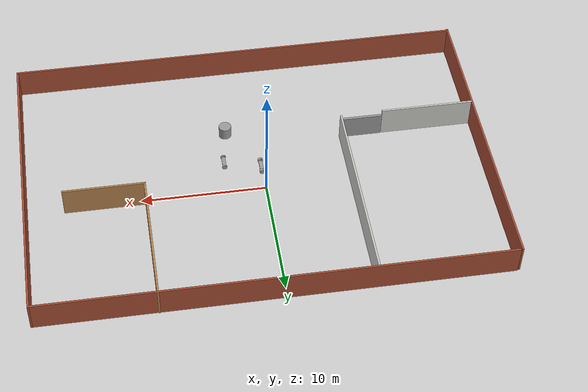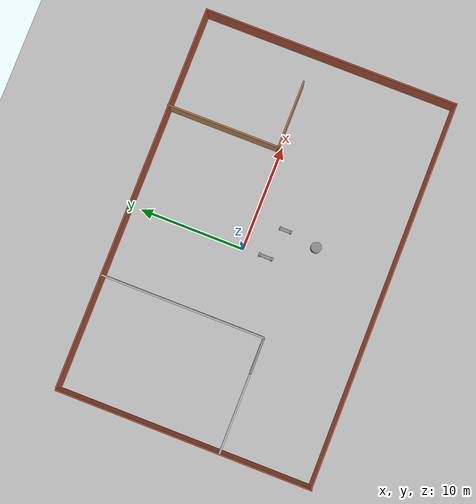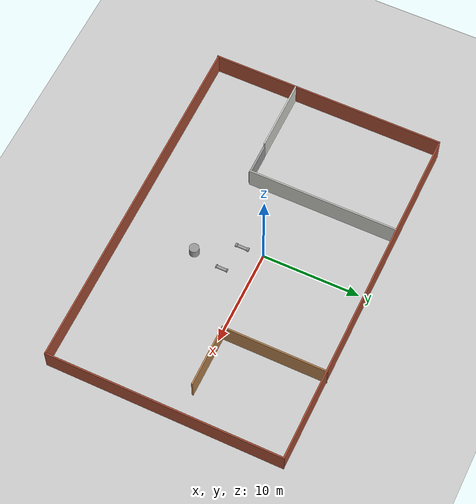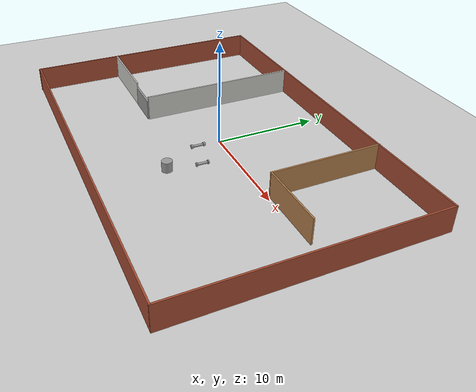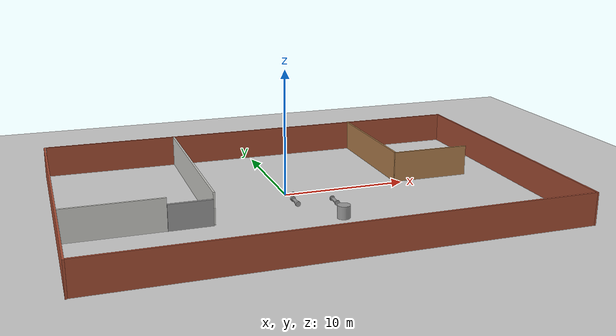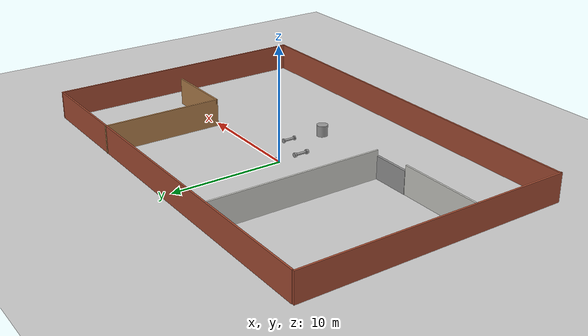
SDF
<sdf version="1.6">
 <world name="default">
  <light name="sun" type="directional">
   <pose>0 0 10 0 -0 0</pose>
   <diffuse>0.8 0.8 0.8 1</diffuse>
   <specular>0.2 0.2 0.2 1</specular>
   <attenuation>
    <range>1000</range>
    <constant>0.9</constant>
    <linear>0.01</linear>
    <quadratic>0.001</quadratic>
   </attenuation>
   <direction>-0.5 0.1 -0.9</direction>
   <spot><inner_angle>0</inner_angle><outer_angle>0</outer_angle><falloff>0</falloff></spot>
  </light>
  <model name="ground_plane">
   <static>1</static>
   <link name="link">
    <collision name="collision">
     <geometry><plane><normal>0 0 1</normal><size>100 100</size></plane></geometry>
     <surface>
      <contact><collide_bitmask>65535</collide_bitmask></contact>
      <friction><ode><mu>100</mu><mu2>50</mu2></ode></friction>
     </surface>
    </collision>
    <visual name="visual">
     <cast_shadows>0</cast_shadows>
     <geometry><plane><normal>0 0 1</normal><size>100 100</size></plane></geometry>
     <material>
      <script><uri>file://media/materials/scripts/gazebo.material</uri><name>Gazebo/Grey</name></script>
     </material>
    </visual>
   </link>
  </model>
  <gravity>0 0 -9.8</gravity>
  <magnetic_field>6e-06 2.3e-05 -4.2e-05</magnetic_field>
  <atmosphere type="adiabatic"/>
  <physics name="default_physics" default="0" type="ode">
   <max_step_size>0.001</max_step_size>
   <real_time_factor>1</real_time_factor>
   <real_time_update_rate>1000</real_time_update_rate>
  </physics>
  <scene><ambient>0.4 0.4 0.4 1</ambient><background>0.7 0.7 0.7 1</background><shadows>1</shadows></scene>
  <spherical_coordinates>
   <surface_model>EARTH_WGS84</surface_model>
   <latitude_deg>0</latitude_deg>
   <longitude_deg>0</longitude_deg>
   <elevation>0</elevation>
   <heading_deg>0</heading_deg>
  </spherical_coordinates>
  <model name="twowheelsrobotModel">
   <link name="link_0">
    <pose>0 0 0.2 0 -0 0</pose>
    <inertial>
     <mass>1</mass>
     <inertia>
      <ixx>0.166667</ixx>
      <ixy>0</ixy>
      <ixz>0</ixz>
      <iyy>0.166667</iyy>
      <iyz>0</iyz>
      <izz>0.166667</izz>
     </inertia>
    </inertial>
    <visual name="visual">
     <geometry><box><size>0.3 1 0.1</size></box></geometry>
     <material>
      <lighting>1</lighting>
      <script><uri>file://media/materials/scripts/gazebo.material</uri><name>Gazebo/Grey</name></script>
      <shader type="pixel"><normal_map>__default__</normal_map></shader>
      <ambient>0.3 0.3 0.3 1</ambient>
      <diffuse>0.7 0.7 0.7 1</diffuse>
      <specular>0.01 0.01 0.01 1</specular>
      <emissive>0 0 0 1</emissive>
     </material>
    </visual>
    <collision name="collision">
     <geometry><box><size>0.3 1 0.1</size></box></geometry>
     <surface>
      <friction>
       <ode><mu>1</mu><mu2>1</mu2><fdir1>0 0 0</fdir1><slip1>0</slip1><slip2>0</slip2></ode>
       <torsional>
        <coefficient>1</coefficient>
        <patch_radius>0</patch_radius>
        <surface_radius>0</surface_radius>
        <use_patch_radius>1</use_patch_radius>
        <ode><slip>0</slip></ode>
       </torsional>
      </friction>
      <bounce><restitution_coefficient>0</restitution_coefficient><threshold>1e+06</threshold></bounce>
      <contact>
       <collide_without_contact>0</collide_without_contact>
       <collide_without_contact_bitmask>1</collide_without_contact_bitmask>
       <collide_bitmask>1</collide_bitmask>
       <ode>
        <soft_cfm>0</soft_cfm>
        <soft_erp>0.2</soft_erp>
        <kp>1e+13</kp>
        <kd>1</kd>
        <max_vel>0.01</max_vel>
        <min_depth>0</min_depth>
       </ode>
       <bullet>
        <split_impulse>1</split_impulse>
        <split_impulse_penetration_threshold>-0.01</split_impulse_penetration_threshold>
        <soft_cfm>0</soft_cfm>
        <soft_erp>0.2</soft_erp>
        <kp>1e+13</kp>
        <kd>1</kd>
       </bullet>
      </contact>
     </surface>
    </collision>
   </link>
   <link name="link_1">
    <pose>0 -0.550019 0.2 1.5707 -0 0</pose>
    <inertial>
     <mass>1</mass>
     <inertia><ixx>0.145833</ixx><ixy>0</ixy><ixz>0</ixz><iyy>0.145833</iyy><iyz>0</iyz><izz>0.125</izz></inertia>
    </inertial>
    <visual name="visual">
     <geometry><cylinder><radius>0.2</radius><length>0.1</length></cylinder></geometry>
     <material>
      <lighting>1</lighting>
      <script><uri>file://media/materials/scripts/gazebo.material</uri><name>Gazebo/Grey</name></script>
      <shader type="pixel"><normal_map>__default__</normal_map></shader>
      <ambient>0.3 0.3 0.3 1</ambient>
      <diffuse>0.7 0.7 0.7 1</diffuse>
      <specular>0.01 0.01 0.01 1</specular>
      <emissive>0 0 0 1</emissive>
     </material>
    </visual>
    <collision name="collision">
     <geometry><cylinder><radius>0.2</radius><length>0.1</length></cylinder></geometry>
     <surface>
      <friction>
       <ode><mu>1</mu><mu2>1</mu2><fdir1>0 0 0</fdir1><slip1>0</slip1><slip2>0</slip2></ode>
       <torsional>
        <coefficient>1</coefficient>
        <patch_radius>0</patch_radius>
        <surface_radius>0</surface_radius>
        <use_patch_radius>1</use_patch_radius>
        <ode><slip>0</slip></ode>
       </torsional>
      </friction>
      <bounce><restitution_coefficient>0</restitution_coefficient><threshold>1e+06</threshold></bounce>
      <contact>
       <collide_without_contact>0</collide_without_contact>
       <collide_without_contact_bitmask>1</collide_without_contact_bitmask>
       <collide_bitmask>1</collide_bitmask>
       <ode>
        <soft_cfm>0</soft_cfm>
        <soft_erp>0.2</soft_erp>
        <kp>1e+13</kp>
        <kd>1</kd>
        <max_vel>0.01</max_vel>
        <min_depth>0</min_depth>
       </ode>
       <bullet>
        <split_impulse>1</split_impulse>
        <split_impulse_penetration_threshold>-0.01</split_impulse_penetration_threshold>
        <soft_cfm>0</soft_cfm>
        <soft_erp>0.2</soft_erp>
        <kp>1e+13</kp>
        <kd>1</kd>
       </bullet>
      </contact>
     </surface>
    </collision>
   </link>
   <link name="link_1_clone">
    <pose>0 0.550019 0.2 1.5707 -0 0</pose>
    <inertial>
     <mass>1</mass>
     <inertia><ixx>0.145833</ixx><ixy>0</ixy><ixz>0</ixz><iyy>0.145833</iyy><iyz>0</iyz><izz>0.125</izz></inertia>
    </inertial>
    <visual name="visual">
     <geometry><cylinder><radius>0.2</radius><length>0.1</length></cylinder></geometry>
     <material>
      <lighting>1</lighting>
      <script><uri>file://media/materials/scripts/gazebo.material</uri><name>Gazebo/Grey</name></script>
      <shader type="pixel"><normal_map>__default__</normal_map></shader>
      <ambient>0.3 0.3 0.3 1</ambient>
      <diffuse>0.7 0.7 0.7 1</diffuse>
      <specular>0.01 0.01 0.01 1</specular>
      <emissive>0 0 0 1</emissive>
     </material>
    </visual>
    <collision name="collision">
     <geometry><cylinder><radius>0.2</radius><length>0.1</length></cylinder></geometry>
     <surface>
      <friction>
       <ode><mu>1</mu><mu2>1</mu2><fdir1>0 0 0</fdir1><slip1>0</slip1><slip2>0</slip2></ode>
       <torsional>
        <coefficient>1</coefficient>
        <patch_radius>0</patch_radius>
        <surface_radius>0</surface_radius>
        <use_patch_radius>1</use_patch_radius>
        <ode><slip>0</slip></ode>
       </torsional>
      </friction>
      <bounce><restitution_coefficient>0</restitution_coefficient><threshold>1e+06</threshold></bounce>
      <contact>
       <collide_without_contact>0</collide_without_contact>
       <collide_without_contact_bitmask>1</collide_without_contact_bitmask>
       <collide_bitmask>1</collide_bitmask>
       <ode>
        <soft_cfm>0</soft_cfm>
        <soft_erp>0.2</soft_erp>
        <kp>1e+13</kp>
        <kd>1</kd>
        <max_vel>0.01</max_vel>
        <min_depth>0</min_depth>
       </ode>
       <bullet>
        <split_impulse>1</split_impulse>
        <split_impulse_penetration_threshold>-0.01</split_impulse_penetration_threshold>
        <soft_cfm>0</soft_cfm>
        <soft_erp>0.2</soft_erp>
        <kp>1e+13</kp>
        <kd>1</kd>
       </bullet>
      </contact>
     </surface>
    </collision>
   </link>
   <joint name="link_0_JOINT_0" type="revolute">
    <parent>link_0</parent>
    <child>link_1</child>
    <axis>
     <xyz>0 0 1</xyz>
     <limit>
      <lower>-1.79769e+308</lower>
      <upper>1.79769e+308</upper>
      <effort>-1</effort>
      <velocity>-1</velocity>
     </limit>
     <dynamics>
      <spring_reference>0</spring_reference>
      <spring_stiffness>0</spring_stiffness>
      <damping>0</damping>
     </dynamics>
     <use_parent_model_frame>0</use_parent_model_frame>
    </axis>
    <physics>
     <ode><limit><cfm>0</cfm><erp>0.2</erp></limit><suspension><cfm>0</cfm><erp>0.2</erp></suspension></ode>
    </physics>
   </joint>
   <joint name="link_0_JOINT_1" type="revolute">
    <parent>link_0</parent>
    <child>link_1_clone</child>
    <axis>
     <xyz>0 0 1</xyz>
     <limit>
      <lower>-1.79769e+308</lower>
      <upper>1.79769e+308</upper>
      <effort>-1</effort>
      <velocity>-1</velocity>
     </limit>
     <dynamics>
      <spring_reference>0</spring_reference>
      <spring_stiffness>0</spring_stiffness>
      <damping>0</damping>
     </dynamics>
     <use_parent_model_frame>0</use_parent_model_frame>
    </axis>
    <physics>
     <ode><limit><cfm>0</cfm><erp>0.2</erp></limit><suspension><cfm>0</cfm><erp>0.2</erp></suspension></ode>
    </physics>
   </joint>
   <static>0</static>
   <pose>3 -2.99995 2e-06 4e-06 -0 0</pose>
  </model>
  <audio><device>default</device></audio>
  <model name="model">
   <pose>0.63961 -1.21857 0 0 -0 0</pose>
   <link name="Door_0">
    <collision name="Door_0_Collision">
     <geometry><box><size>3.30761 0.2 2</size></box></geometry>
     <pose>0 0 1 0 -0 0</pose>
    </collision>
    <visual name="Door_0_Visual">
     <pose>0 0 1 0 -0 0</pose>
     <geometry><box><size>3.30761 0.2 2</size></box></geometry>
     <material>
      <script><uri>file://media/materials/scripts/gazebo.material</uri><name>Gazebo/Grey</name></script>
     </material>
    </visual>
    <pose>-9.15583 -3.46572 0 0 -0 0</pose>
   </link>
   <link name="Wall_0">
    <collision name="Wall_0_Collision">
     <geometry><box><size>24.25 0.15 2.5</size></box></geometry>
     <pose>0 0 1.25 0 -0 0</pose>
    </collision>
    <visual name="Wall_0_Visual">
     <pose>0 0 1.25 0 -0 0</pose>
     <geometry><box><size>24.25 0.15 2.5</size></box></geometry>
     <material>
      <script><uri>file://media/materials/scripts/gazebo.material</uri><name>Gazebo/Bricks</name></script>
      <ambient>1 1 1 1</ambient>
     </material>
     <meta><layer>0</layer></meta>
    </visual>
    <pose>-18.3048 -0.053502 0 0 -0 -1.5708</pose>
   </link>
   <link name="Wall_1">
    <collision name="Wall_1_Collision">
     <geometry><box><size>36.706 0.15 2.5</size></box></geometry>
     <pose>0 0 1.25 0 -0 0</pose>
    </collision>
    <visual name="Wall_1_Visual">
     <pose>0 0 1.25 0 -0 0</pose>
     <geometry><box><size>36.706 0.15 2.5</size></box></geometry>
     <material>
      <script><uri>file://media/materials/scripts/gazebo.material</uri><name>Gazebo/Bricks</name></script>
      <ambient>1 1 1 1</ambient>
     </material>
     <meta><layer>0</layer></meta>
    </visual>
    <pose>0.026751 -12.05 0 0 -0 0</pose>
   </link>
   <link name="Wall_10">
    <collision name="Wall_10_Collision">
     <geometry><box><size>7.5 0.15 2.5</size></box></geometry>
     <pose>0 0 1.25 0 -0 0</pose>
    </collision>
    <visual name="Wall_10_Visual">
     <pose>0 0 1.25 0 -0 0</pose>
     <geometry><box><size>7.5 0.15 2.5</size></box></geometry>
     <material>
      <script><uri>file://media/materials/scripts/gazebo.material</uri><name>Gazebo/CeilingTiled</name></script>
      <ambient>1 1 1 1</ambient>
     </material>
     <meta><layer>0</layer></meta>
    </visual>
    <pose>-14.5763 -3.46572 0 0 -0 0</pose>
   </link>
   <link name="Wall_12">
    <collision name="Wall_12_Collision">
     <geometry><box><size>10.75 0.15 2.5</size></box></geometry>
     <pose>0 0 1.25 0 -0 0</pose>
    </collision>
    <visual name="Wall_12_Visual">
     <pose>0 0 1.25 0 -0 0</pose>
     <geometry><box><size>10.75 0.15 2.5</size></box></geometry>
     <material>
      <script><uri>file://media/materials/scripts/gazebo.material</uri><name>Gazebo/Wood</name></script>
      <ambient>1 1 1 1</ambient>
     </material>
     <meta><layer>0</layer></meta>
    </visual>
    <pose>8.92802 6.8035 0 0 -0 -1.5708</pose>
   </link>
   <link name="Wall_13">
    <collision name="Wall_13_Collision">
     <geometry><box><size>6.5 0.15 2.5</size></box></geometry>
     <pose>0 0 1.25 0 -0 0</pose>
    </collision>
    <visual name="Wall_13_Visual">
     <pose>0 0 1.25 0 -0 0</pose>
     <geometry><box><size>6.5 0.15 2.5</size></box></geometry>
     <material>
      <script><uri>file://media/materials/scripts/gazebo.material</uri><name>Gazebo/Wood</name></script>
      <ambient>1 1 1 1</ambient>
     </material>
     <meta><layer>0</layer></meta>
    </visual>
    <pose>12.103 1.5035 0 0 -0 0</pose>
   </link>
   <link name="Wall_2">
    <collision name="Wall_2_Collision">
     <geometry><box><size>24.25 0.15 2.5</size></box></geometry>
     <pose>0 0 1.25 0 -0 0</pose>
    </collision>
    <visual name="Wall_2_Visual">
     <pose>0 0 1.25 0 -0 0</pose>
     <geometry><box><size>24.25 0.15 2.5</size></box></geometry>
     <material>
      <script><uri>file://media/materials/scripts/gazebo.material</uri><name>Gazebo/Bricks</name></script>
      <ambient>1 1 1 1</ambient>
     </material>
     <meta><layer>0</layer></meta>
    </visual>
    <pose>18.3048 0 0 0 -0 1.5708</pose>
   </link>
   <link name="Wall_3">
    <collision name="Wall_3_Collision">
     <geometry><box><size>36.5572 0.15 2.5</size></box></geometry>
     <pose>0 0 1.25 0 -0 0</pose>
    </collision>
    <visual name="Wall_3_Visual">
     <pose>0 0 1.25 0 -0 0</pose>
     <geometry><box><size>36.5572 0.15 2.5</size></box></geometry>
     <material>
      <script><uri>file://media/materials/scripts/gazebo.material</uri><name>Gazebo/Bricks</name></script>
      <ambient>1 1 1 1</ambient>
     </material>
     <meta><layer>0</layer></meta>
    </visual>
    <pose>0.101144 12.05 0 0 -0 3.14159</pose>
   </link>
   <link name="Wall_8">
    <collision name="Wall_8_Collision">
     <geometry><box><size>15.5 0.15 2.5</size></box></geometry>
     <pose>0 0 1.25 0 -0 0</pose>
    </collision>
    <visual name="Wall_8_Visual">
     <pose>0 0 1.25 0 -0 0</pose>
     <geometry><box><size>15.5 0.15 2.5</size></box></geometry>
     <material>
      <script><uri>file://media/materials/scripts/gazebo.material</uri><name>Gazebo/CeilingTiled</name></script>
      <ambient>1 1 1 1</ambient>
     </material>
     <meta><layer>0</layer></meta>
    </visual>
    <pose>-7.44375 4.29877 0 0 -0 1.5708</pose>
   </link>
   <static>1</static>
  </model>
  <model name="unit_cylinder">
   <pose>2.49801 -6.1637 0.499997 4e-06 4e-06 -0</pose>
   <link name="link">
    <inertial>
     <mass>1</mass>
     <inertia><ixx>0.145833</ixx><ixy>0</ixy><ixz>0</ixz><iyy>0.145833</iyy><iyz>0</iyz><izz>0.125</izz></inertia>
    </inertial>
    <collision name="collision">
     <geometry><cylinder><radius>0.5</radius><length>1</length></cylinder></geometry>
    </collision>
    <visual name="visual">
     <geometry><cylinder><radius>0.5</radius><length>1</length></cylinder></geometry>
     <material>
      <script><name>Gazebo/Grey</name><uri>file://media/materials/scripts/gazebo.material</uri></script>
     </material>
    </visual>
   </link>
  </model>
  <model name="twowheelsrobotModel_clone">
   <link name="link_0">
    <pose>0 0 0.2 0 -0 0</pose>
    <inertial>
     <mass>1</mass>
     <inertia>
      <ixx>0.166667</ixx>
      <ixy>0</ixy>
      <ixz>0</ixz>
      <iyy>0.166667</iyy>
      <iyz>0</iyz>
      <izz>0.166667</izz>
     </inertia>
    </inertial>
    <visual name="visual">
     <geometry><box><size>0.3 1 0.1</size></box></geometry>
     <material>
      <lighting>1</lighting>
      <script><uri>file://media/materials/scripts/gazebo.material</uri><name>Gazebo/Grey</name></script>
      <shader type="pixel"><normal_map>__default__</normal_map></shader>
      <ambient>0.3 0.3 0.3 1</ambient>
      <diffuse>0.7 0.7 0.7 1</diffuse>
      <specular>0.01 0.01 0.01 1</specular>
      <emissive>0 0 0 1</emissive>
     </material>
    </visual>
    <collision name="collision">
     <geometry><box><size>0.3 1 0.1</size></box></geometry>
     <surface>
      <friction>
       <ode><mu>1</mu><mu2>1</mu2><fdir1>0 0 0</fdir1><slip1>0</slip1><slip2>0</slip2></ode>
       <torsional>
        <coefficient>1</coefficient>
        <patch_radius>0</patch_radius>
        <surface_radius>0</surface_radius>
        <use_patch_radius>1</use_patch_radius>
        <ode><slip>0</slip></ode>
       </torsional>
      </friction>
      <bounce><restitution_coefficient>0</restitution_coefficient><threshold>1e+06</threshold></bounce>
      <contact>
       <collide_without_contact>0</collide_without_contact>
       <collide_without_contact_bitmask>1</collide_without_contact_bitmask>
       <collide_bitmask>1</collide_bitmask>
       <ode>
        <soft_cfm>0</soft_cfm>
        <soft_erp>0.2</soft_erp>
        <kp>1e+13</kp>
        <kd>1</kd>
        <max_vel>0.01</max_vel>
        <min_depth>0</min_depth>
       </ode>
       <bullet>
        <split_impulse>1</split_impulse>
        <split_impulse_penetration_threshold>-0.01</split_impulse_penetration_threshold>
        <soft_cfm>0</soft_cfm>
        <soft_erp>0.2</soft_erp>
        <kp>1e+13</kp>
        <kd>1</kd>
       </bullet>
      </contact>
     </surface>
    </collision>
   </link>
   <link name="link_1">
    <pose>0 -0.600019 0.2 1.5707 -0 0</pose>
    <inertial>
     <mass>1</mass>
     <inertia><ixx>0.145833</ixx><ixy>0</ixy><ixz>0</ixz><iyy>0.145833</iyy><iyz>0</iyz><izz>0.125</izz></inertia>
    </inertial>
    <visual name="visual">
     <geometry><cylinder><radius>0.2</radius><length>0.2</length></cylinder></geometry>
     <material>
      <lighting>1</lighting>
      <script><uri>file://media/materials/scripts/gazebo.material</uri><name>Gazebo/Grey</name></script>
      <shader type="pixel"><normal_map>__default__</normal_map></shader>
      <ambient>0.3 0.3 0.3 1</ambient>
      <diffuse>0.7 0.7 0.7 1</diffuse>
      <specular>0.01 0.01 0.01 1</specular>
      <emissive>0 0 0 1</emissive>
     </material>
    </visual>
    <collision name="collision">
     <geometry><cylinder><radius>0.2</radius><length>0.2</length></cylinder></geometry>
     <surface>
      <friction>
       <ode><mu>1</mu><mu2>1</mu2><fdir1>0 0 0</fdir1><slip1>0</slip1><slip2>0</slip2></ode>
       <torsional>
        <coefficient>1</coefficient>
        <patch_radius>0</patch_radius>
        <surface_radius>0</surface_radius>
        <use_patch_radius>1</use_patch_radius>
        <ode><slip>0</slip></ode>
       </torsional>
      </friction>
      <bounce><restitution_coefficient>0</restitution_coefficient><threshold>1e+06</threshold></bounce>
      <contact>
       <collide_without_contact>0</collide_without_contact>
       <collide_without_contact_bitmask>1</collide_without_contact_bitmask>
       <collide_bitmask>1</collide_bitmask>
       <ode>
        <soft_cfm>0</soft_cfm>
        <soft_erp>0.2</soft_erp>
        <kp>1e+13</kp>
        <kd>1</kd>
        <max_vel>0.01</max_vel>
        <min_depth>0</min_depth>
       </ode>
       <bullet>
        <split_impulse>1</split_impulse>
        <split_impulse_penetration_threshold>-0.01</split_impulse_penetration_threshold>
        <soft_cfm>0</soft_cfm>
        <soft_erp>0.2</soft_erp>
        <kp>1e+13</kp>
        <kd>1</kd>
       </bullet>
      </contact>
     </surface>
    </collision>
   </link>
   <link name="link_1_clone">
    <pose>0 0.600019 0.2 1.5707 -0 0</pose>
    <inertial>
     <mass>1</mass>
     <inertia><ixx>0.145833</ixx><ixy>0</ixy><ixz>0</ixz><iyy>0.145833</iyy><iyz>0</iyz><izz>0.125</izz></inertia>
    </inertial>
    <visual name="visual">
     <geometry><cylinder><radius>0.2</radius><length>0.2</length></cylinder></geometry>
     <material>
      <lighting>1</lighting>
      <script><uri>file://media/materials/scripts/gazebo.material</uri><name>Gazebo/Grey</name></script>
      <shader type="pixel"><normal_map>__default__</normal_map></shader>
      <ambient>0.3 0.3 0.3 1</ambient>
      <diffuse>0.7 0.7 0.7 1</diffuse>
      <specular>0.01 0.01 0.01 1</specular>
      <emissive>0 0 0 1</emissive>
     </material>
    </visual>
    <collision name="collision">
     <geometry><cylinder><radius>0.2</radius><length>0.2</length></cylinder></geometry>
     <surface>
      <friction>
       <ode><mu>1</mu><mu2>1</mu2><fdir1>0 0 0</fdir1><slip1>0</slip1><slip2>0</slip2></ode>
       <torsional>
        <coefficient>1</coefficient>
        <patch_radius>0</patch_radius>
        <surface_radius>0</surface_radius>
        <use_patch_radius>1</use_patch_radius>
        <ode><slip>0</slip></ode>
       </torsional>
      </friction>
      <bounce><restitution_coefficient>0</restitution_coefficient><threshold>1e+06</threshold></bounce>
      <contact>
       <collide_without_contact>0</collide_without_contact>
       <collide_without_contact_bitmask>1</collide_without_contact_bitmask>
       <collide_bitmask>1</collide_bitmask>
       <ode>
        <soft_cfm>0</soft_cfm>
        <soft_erp>0.2</soft_erp>
        <kp>1e+13</kp>
        <kd>1</kd>
        <max_vel>0.01</max_vel>
        <min_depth>0</min_depth>
       </ode>
       <bullet>
        <split_impulse>1</split_impulse>
        <split_impulse_penetration_threshold>-0.01</split_impulse_penetration_threshold>
        <soft_cfm>0</soft_cfm>
        <soft_erp>0.2</soft_erp>
        <kp>1e+13</kp>
        <kd>1</kd>
       </bullet>
      </contact>
     </surface>
    </collision>
   </link>
   <joint name="link_0_JOINT_0" type="revolute">
    <parent>link_0</parent>
    <child>link_1</child>
    <axis>
     <xyz>0 0 1</xyz>
     <limit>
      <lower>-1.79769e+308</lower>
      <upper>1.79769e+308</upper>
      <effort>-1</effort>
      <velocity>-1</velocity>
     </limit>
     <dynamics>
      <spring_reference>0</spring_reference>
      <spring_stiffness>0</spring_stiffness>
      <damping>0</damping>
      <friction>0</friction>
     </dynamics>
     <use_parent_model_frame>0</use_parent_model_frame>
    </axis>
    <physics>
     <ode><limit><cfm>0</cfm><erp>0.2</erp></limit><suspension><cfm>0</cfm><erp>0.2</erp></suspension></ode>
    </physics>
   </joint>
   <joint name="link_0_JOINT_1" type="revolute">
    <parent>link_0</parent>
    <child>link_1_clone</child>
    <axis>
     <xyz>0 0 1</xyz>
     <limit>
      <lower>-1.79769e+308</lower>
      <upper>1.79769e+308</upper>
      <effort>-1</effort>
      <velocity>-1</velocity>
     </limit>
     <dynamics>
      <spring_reference>0</spring_reference>
      <spring_stiffness>0</spring_stiffness>
      <damping>0</damping>
      <friction>0</friction>
     </dynamics>
     <use_parent_model_frame>0</use_parent_model_frame>
    </axis>
    <physics>
     <ode><limit><cfm>0</cfm><erp>0.2</erp></limit><suspension><cfm>0</cfm><erp>0.2</erp></suspension></ode>
    </physics>
   </joint>
   <static>0</static>
   <pose>0.084239 -2.20648 1e-05 0 -0 0</pose>
  </model>
  <model name="ball">
   <link name="link">
    <inertial>
     <mass>1</mass>
     <inertia><ixx>0.1</ixx><ixy>0</ixy><ixz>0</ixz><iyy>0.1</iyy><iyz>0</iyz><izz>0.1</izz></inertia>
    </inertial>
    <visual name="visual">
     <geometry><sphere><radius>0.1</radius></sphere></geometry>
     <material>
      <script><name>Gazebo/Grey</name><uri>file://media/materials/scripts/gazebo.material</uri></script>
      <shader type="pixel"><normal_map>__default__</normal_map></shader>
      <ambient>1 1 1 1</ambient>
      <diffuse>1 1 1 1</diffuse>
      <specular>1 1 1 1</specular>
      <emissive>1 1 1 1</emissive>
     </material>
    </visual>
    <collision name="collision">
     <geometry><sphere><radius>0.1</radius></sphere></geometry>
     <surface>
      <friction>
       <ode><mu>1</mu><mu2>1</mu2><fdir1>0 0 0</fdir1><slip1>0</slip1><slip2>0</slip2></ode>
       <torsional>
        <coefficient>1</coefficient>
        <patch_radius>0</patch_radius>
        <surface_radius>0</surface_radius>
        <use_patch_radius>1</use_patch_radius>
        <ode><slip>0</slip></ode>
       </torsional>
      </friction>
      <bounce><restitution_coefficient>0</restitution_coefficient><threshold>1e+06</threshold></bounce>
      <contact>
       <collide_without_contact>0</collide_without_contact>
       <collide_without_contact_bitmask>1</collide_without_contact_bitmask>
       <collide_bitmask>1</collide_bitmask>
       <ode>
        <soft_cfm>0</soft_cfm>
        <soft_erp>0.2</soft_erp>
        <kp>1e+13</kp>
        <kd>1</kd>
        <max_vel>0.01</max_vel>
        <min_depth>0</min_depth>
       </ode>
       <bullet>
        <split_impulse>1</split_impulse>
        <split_impulse_penetration_threshold>-0.01</split_impulse_penetration_threshold>
        <soft_cfm>0</soft_cfm>
        <soft_erp>0.2</soft_erp>
        <kp>1e+13</kp>
        <kd>1</kd>
       </bullet>
      </contact>
     </surface>
    </collision>
   </link>
   <static>0</static>
   <pose>0.628206 -0.004842 0.1 0 -0 0</pose>
  </model>
  <plugin filename="libcollision_map_creator.so" name="collision_map_creator"/>
 </world>
</sdf>
